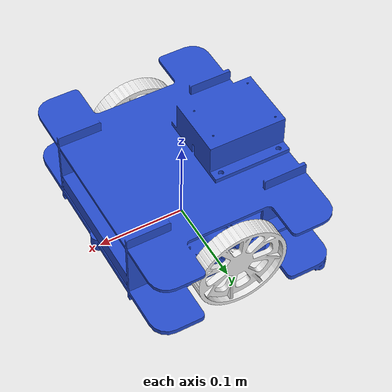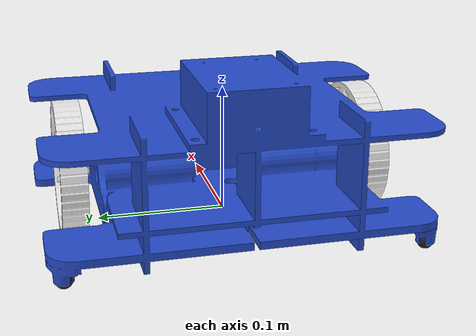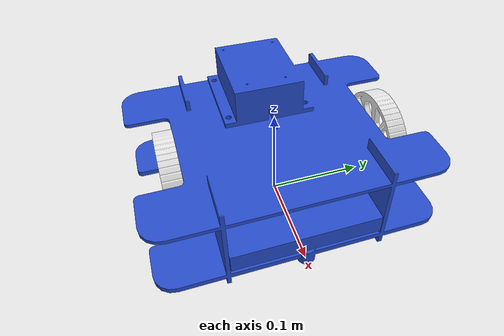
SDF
<sdf version='1.7'>
  <model name='tankbot_robot'>
    <link name='base_link'>
      <inertial>
        <pose>-0.09918 0 -3e-05 0 -0 0</pose>
        <mass>1.014</mass>
        <inertia>
          <ixx>0.00574778</ixx>
          <ixy>8.88533e-23</ixy>
          <ixz>0.00489538</ixz>
          <iyy>0.025588</iyy>
          <iyz>-3.2077e-24</iyz>
          <izz>0.0279562</izz>
        </inertia>
      </inertial>
      <collision name='base_link_fixed_joint_lump__chassis_collision'>
        <pose>0.0015 0 0.05 0 -0 0</pose>
        <geometry>
          <box>
            <size>0.215 0.201 0.1</size>
          </box>
        </geometry>
        <surface>
          <contact>
            <ode/>
          </contact>
          <friction>
            <ode/>
          </friction>
        </surface>
      </collision>
      <collision name='base_link_fixed_joint_lump__caster_wheel_back_left_collision_1'>
        <pose>-0.0925 0.1337 -0.002 0 -0 0</pose>
        <geometry>
          <sphere>
            <radius>0.0065</radius>
          </sphere>
        </geometry>
        <surface>
          <contact>
            <ode/>
          </contact>
          <friction>
            <ode>
              <mu>0.0001</mu>
              <mu2>0.0001</mu2>
            </ode>
          </friction>
        </surface>
      </collision>
      <collision name='base_link_fixed_joint_lump__caster_wheel_back_right_collision_2'>
        <pose>-0.0925 -0.1337 -0.002 0 -0 0</pose>
        <geometry>
          <sphere>
            <radius>0.0065</radius>
          </sphere>
        </geometry>
        <surface>
          <contact>
            <ode/>
          </contact>
          <friction>
            <ode>
              <mu>0.0001</mu>
              <mu2>0.0001</mu2>
            </ode>
          </friction>
        </surface>
      </collision>
      <collision name='base_link_fixed_joint_lump__caster_wheel_collision_3'>
        <pose>0.089 0 -0.0025 0 -0 0</pose>
        <geometry>
          <sphere>
            <radius>0.005</radius>
          </sphere>
        </geometry>
        <surface>
          <contact>
            <ode/>
          </contact>
          <friction>
            <ode>
              <mu>0.0001</mu>
              <mu2>0.0001</mu2>
            </ode>
          </friction>
        </surface>
      </collision>
      <visual name='base_link_fixed_joint_lump__chassis_visual'>
        <pose>0.00125 0 0.01 0 -0 0</pose>
        <geometry>
          <mesh>
            <scale>1 1 1</scale>
            <uri>model://meshes/chassis.stl</uri>
          </mesh>
        </geometry>
        <material>
          <script>
            <name>Gazebo/Blue</name>
            <uri>file://media/materials/scripts/gazebo.material</uri>
          </script>
        </material>
      </visual>
      <visual name='base_link_fixed_joint_lump__caster_wheel_back_left_visual_1'>
        <pose>-0.0925 0.1337 -0.002 0 -0 0</pose>
        <geometry>
          <sphere>
            <radius>0.0065</radius>
          </sphere>
        </geometry>
        <material>
          <script>
            <name>Gazebo/Black</name>
            <uri>file://media/materials/scripts/gazebo.material</uri>
          </script>
        </material>
      </visual>
      <visual name='base_link_fixed_joint_lump__caster_wheel_back_right_visual_2'>
        <pose>-0.0925 -0.1337 -0.002 0 -0 0</pose>
        <geometry>
          <sphere>
            <radius>0.0065</radius>
          </sphere>
        </geometry>
        <material>
          <script>
            <name>Gazebo/Black</name>
            <uri>file://media/materials/scripts/gazebo.material</uri>
          </script>
        </material>
      </visual>
      <visual name='base_link_fixed_joint_lump__caster_wheel_visual_3'>
        <pose>0.089 0 -0.0025 0 -0 0</pose>
        <geometry>
          <sphere>
            <radius>0.005</radius>
          </sphere>
        </geometry>
        <material>
          <script>
            <name>Gazebo/Black</name>
            <uri>file://media/materials/scripts/gazebo.material</uri>
          </script>
        </material>
      </visual>
    </link>
    <joint name='left_wheel_joint' type='revolute'>
      <pose relative_to='base_link'>0 0.1105 0.044 -1.5708 0 0</pose>
      <parent>base_link</parent>
      <child>left_wheel</child>
      <axis>
        <xyz>0 0 1</xyz>
        <limit>
          <lower>-1e+16</lower>
          <upper>1e+16</upper>
        </limit>
        <dynamics>
          <spring_reference>0</spring_reference>
          <spring_stiffness>0</spring_stiffness>
        </dynamics>
      </axis>
    </joint>
    <link name='left_wheel'>
      <pose relative_to='left_wheel_joint'>0 0 0 0 -0 0</pose>
      <inertial>
        <pose>0 0 0 0 -0 0</pose>
        <mass>0.08</mass>
        <inertia>
          <ixx>5.67467e-05</ixx>
          <ixy>0</ixy>
          <ixz>0</ixz>
          <iyy>5.67467e-05</iyy>
          <iyz>0</iyz>
          <izz>0.00010816</izz>
        </inertia>
      </inertial>
      <collision name='left_wheel_collision'>
        <pose>0 0 0 0 -0 0</pose>
        <geometry>
          <cylinder>
            <length>0.02</length>
            <radius>0.052</radius>
          </cylinder>
        </geometry>
        <surface>
          <contact>
            <ode/>
          </contact>
          <friction>
            <ode/>
          </friction>
        </surface>
      </collision>
      <visual name='left_wheel_visual'>
        <pose>0 0 0 0 -0 0</pose>
        <geometry>
          <mesh>
            <scale>1 1 1</scale>
            <uri>model://meshes/left_wheel_link.stl</uri>
          </mesh>
        </geometry>
        <material>
          <script>
            <name>Gazebo/White</name>
            <uri>file://media/materials/scripts/gazebo.material</uri>
          </script>
        </material>
      </visual>
    </link>
    <joint name='right_wheel_joint' type='revolute'>
      <pose relative_to='base_link'>0 -0.1 0.044 1.5708 -0 0</pose>
      <parent>base_link</parent>
      <child>right_wheel</child>
      <axis>
        <xyz>0 0 -1</xyz>
        <limit>
          <lower>-1e+16</lower>
          <upper>1e+16</upper>
        </limit>
        <dynamics>
          <spring_reference>0</spring_reference>
          <spring_stiffness>0</spring_stiffness>
        </dynamics>
      </axis>
    </joint>
    <link name='right_wheel'>
      <pose relative_to='right_wheel_joint'>0 0 0 0 -0 0</pose>
      <inertial>
        <pose>0 0 0 0 -0 0</pose>
        <mass>0.08</mass>
        <inertia>
          <ixx>5.67467e-05</ixx>
          <ixy>0</ixy>
          <ixz>0</ixz>
          <iyy>5.67467e-05</iyy>
          <iyz>0</iyz>
          <izz>0.00010816</izz>
        </inertia>
      </inertial>
      <collision name='right_wheel_collision'>
        <pose>0 0 0 0 -0 0</pose>
        <geometry>
          <cylinder>
            <length>0.02</length>
            <radius>0.052</radius>
          </cylinder>
        </geometry>
        <surface>
          <contact>
            <ode/>
          </contact>
          <friction>
            <ode/>
          </friction>
        </surface>
      </collision>
      <visual name='right_wheel_visual'>
        <pose>0 0 0 0 -0 0</pose>
        <geometry>
          <mesh>
            <scale>1 1 1</scale>
            <uri>model://meshes/right_wheel_link.stl</uri>
          </mesh>
        </geometry>
        <material>
          <script>
            <name>Gazebo/White</name>
            <uri>file://media/materials/scripts/gazebo.material</uri>
          </script>
        </material>
      </visual>
    </link>
    <static>0</static>
    <plugin name='diff_drive' filename='libgazebo_ros_diff_drive.so'>
      <left_joint>left_wheel_joint</left_joint>
      <right_joint>right_wheel_joint</right_joint>
      <wheel_separation>0.21</wheel_separation>
      <wheel_diameter>0.104</wheel_diameter>
      <max_wheel_torque>200</max_wheel_torque>
      <max_wheel_acceleration>10.0</max_wheel_acceleration>
      <odometry_frame>odom</odometry_frame>
      <robot_base_frame>base_link</robot_base_frame>
      <publish_odom>1</publish_odom>
      <publish_odom_tf>1</publish_odom_tf>
      <publish_wheel_tf>1</publish_wheel_tf>
    </plugin>
  </model>
</sdf>
